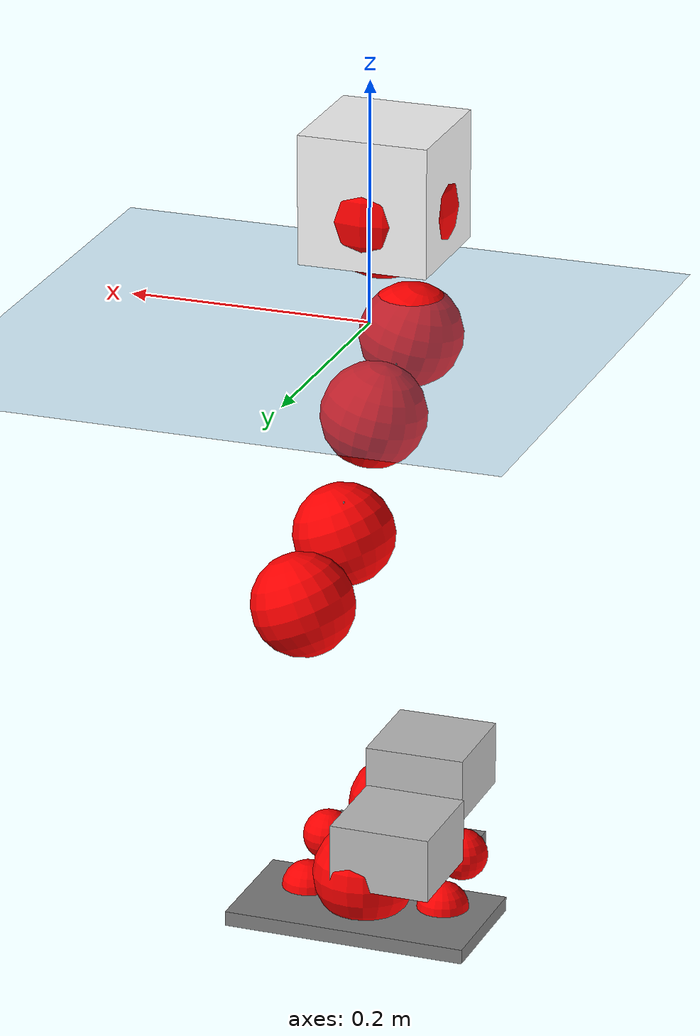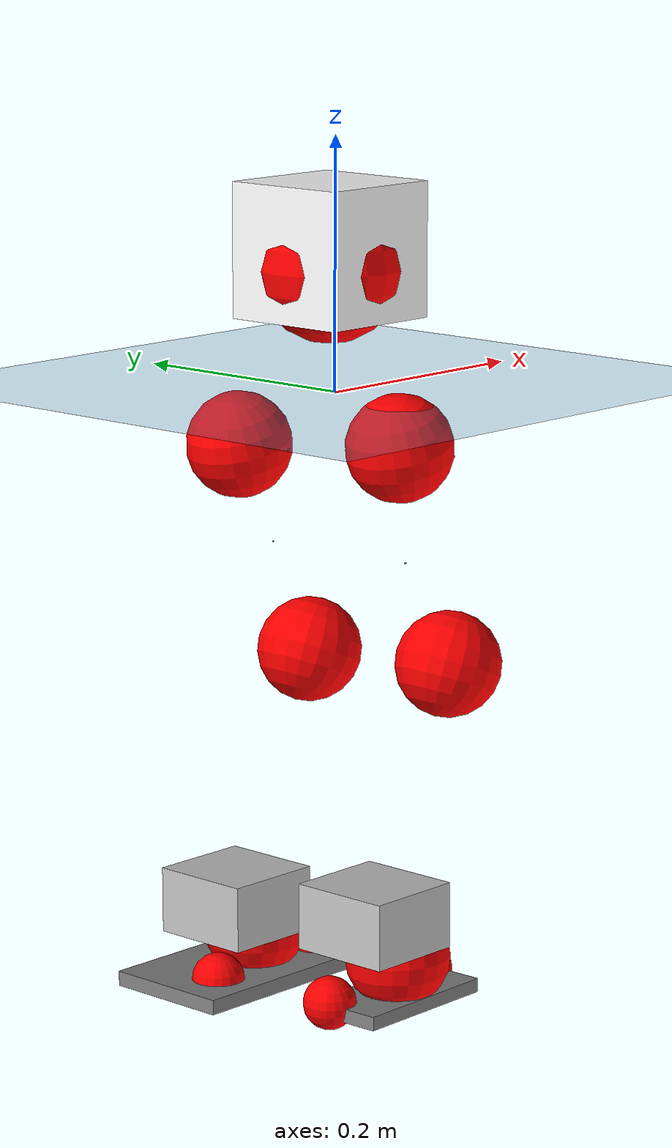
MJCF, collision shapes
<mujoco model="pi_12dof_release_v1">
  <compiler angle="radian" assetdir="assets" balanceinertia="true" inertiafromgeom="false"/>

  <option timestep="0.005" density="1.2" viscosity="2e-05"/>

  <size nkey="1"/>

  <visual>
    <quality shadowsize="8192"/>
    <map shadowclip="0.5"/>
  </visual>

  <default>
    <default class="/">
      <joint armature="0.01" damping="0.01" frictionloss="0.01"/>
      <geom contype="0" conaffinity="0" group="1" solref="-1000 -80"/>
      <site size="0.01 0.005 0.005" group="5"/>
      <general forcelimited="true" biastype="affine" gainprm="20" biasprm="0 -20 -0.5"/>
      <default class="foot">
        <geom size="0.0845 0.036 0.005" type="box" condim="6" group="4" priority="1" friction="0.9 0.2 0.2" solimp="0.015 1 0.005"/>
      </default>
      <default class="reward_collision_sphere">
        <geom group="5" rgba="1 0 0 1"/>
      </default>
    </default>
  </default>

  <asset>
    <texture type="skybox" colorspace="auto" name="//unnamed_texture_0" builtin="gradient" rgb1="0.95 0.95 0.95" rgb2="0.95 0.95 0.95" width="100" height="600"/>
    <texture type="2d" colorspace="auto" name="texplane" builtin="checker" rgb1="0.345 0.575 0.748" rgb2="0.345 0.575 0.748" markrgb="1 1 1" width="512" height="512"/>
    <material name="MatPlane" class="/" texture="texplane" texuniform="true" texrepeat="2 2" specular="0.9"/>
    <mesh name="baselink_1" class="/" file="baselink_1.STL"/>
    <mesh name="r_hip_pitch_link" class="/" file="r_hip_pitch_link.STL"/>
    <mesh name="r_hip_roll_link" class="/" file="r_hip_roll_link.STL"/>
    <mesh name="r_thigh_link" class="/" file="r_thigh_link.STL"/>
    <mesh name="r_calf_link" class="/" file="r_calf_link.STL"/>
    <mesh name="r_ankle_pitch_link" class="/" file="r_ankle_pitch_link.STL"/>
    <mesh name="r_ankle_roll_link" class="/" file="r_ankle_roll_link.STL"/>
    <mesh name="l_hip_pitch_link" class="/" file="l_hip_pitch_link.STL"/>
    <mesh name="l_hip_roll_link" class="/" file="l_hip_roll_link.STL"/>
    <mesh name="l_thigh_link" class="/" file="l_thigh_link.STL"/>
    <mesh name="l_calf_link" class="/" file="l_calf_link.STL"/>
    <mesh name="l_ankle_pitch_link" class="/" file="l_ankle_pitch_link.STL"/>
    <mesh name="l_ankle_roll_link" class="/" file="l_ankle_roll_link.STL"/>
  </asset>

  <worldbody>
    <geom name="floor" class="/" size="100 100 0.125" type="plane" group="0" material="MatPlane"/>
    <light name="toplight_shadow" class="/" pos="0 0 5" dir="0.0990148 0.0990148 -0.990148" type="directional" ambient="0.04 0.04 0.04" diffuse="0.55 0.55 0.55" specular="0.12 0.12 0.12"/>
    <light name="toplight_fill" class="/" pos="0 0 5" dir="0.0990148 0.0990148 -0.990148" type="directional" castshadow="false" ambient="0.04 0.04 0.04" diffuse="0.3 0.3 0.3" specular="0.08 0.08 0.08"/>
    <body name="trunk" pos="-0.0106218 -0.00395002 -0.000604034" quat="1 -0.000589886 0.000581431 -0.000500133">
      <inertial pos="0.00272011 -0.00108343 0.0579689" quat="0.712558 -0.00207789 -0.000690016 0.70161" mass="2.58404" diaginertia="0.00337735 0.00434872 0.0232748"/>
      <joint name="//unnamed_joint_0" type="free"/>
      <geom name="//unnamed_geom_1" class="/" type="mesh" density="0" rgba="1 1 1 1" mesh="baselink_1"/>
      <geom name="//unnamed_geom_2" class="/" size="0.0529169 0.0529169 0.0529169" pos="0 0 0.1135" type="box" rgba="1 1 1 1"/>
      <geom name="//unnamed_geom_3" class="reward_collision_sphere" size="0.0582086" pos="0 0 0.0993125"/>
      <site name="imu" class="/" pos="-0.0119153 0.00197047 0.0606371" size="0.0105834"/>
      <camera name="track" class="/" pos="0 -1.80564 0" quat="0.707107 0.707107 0 0" mode="trackcom"/>
      <camera name="ego_camera" class="/" pos="0.0640083 0 0.255375" quat="-0.5 -0.5 0.5 0.5"/>
      <body name="r_hip_pitch_link" pos="-0.00341834 -0.0201295 -0.0405496" quat="0.991641 -0.000669221 -0.129011 -0.00196868">
        <inertial pos="0.0123331 -0.0458721 -0.000278546" quat="-0.013839 0.708874 -0.0263827 0.704706" mass="0.440792" diaginertia="4.93177e-05 6.3807e-05 0.000471622"/>
        <joint name="r_hip_pitch_joint" class="/" pos="0 0 0" axis="0.0382428 -0.99892 -0.026403" stiffness="0.000801184" range="-1.97874 1.10322" armature="0.0106866" damping="0" frictionloss="0.0105312"/>
        <geom name="//unnamed_geom_4" class="/" type="mesh" density="0" rgba="0.75294 0.75294 0.75294 1" mesh="r_hip_pitch_link"/>
        <geom name="//unnamed_geom_5" class="/" size="0.000529169 0.000529169 0.000529169" type="box" rgba="0.75294 0.75294 0.75294 1"/>
        <body name="r_hip_roll_link" pos="0.0072071 -0.050795 0.00589353" quat="0.999998 0.00182561 -0.000851682 0.000896017">
          <inertial pos="-0.00028253 -0.00215993 -0.0736722" quat="0.693935 -0.0984011 -0.0865824 0.708007" mass="0.485301" diaginertia="0.000160093 0.00017466 0.000756543"/>
          <joint name="r_hip_roll_joint" class="/" pos="0 0 0" axis="-0.998844 0.0355606 -0.0323283" stiffness="0.00549988" range="-0.119871 0.288693" armature="0.00797819" damping="0.0305914" frictionloss="0.0148666"/>
          <geom name="//unnamed_geom_6" class="/" type="mesh" density="0" rgba="0.75294 0.75294 0.75294 1" mesh="r_hip_roll_link"/>
          <geom name="//unnamed_geom_7" class="/" size="0.000529169 0.000529169 0.000529169" type="box" rgba="0.75294 0.75294 0.75294 1"/>
          <geom name="//unnamed_geom_8" class="reward_collision_sphere" size="0.0423335"/>
          <body name="r_thigh_link" pos="-0.00325785 0.0131605 -0.0980067" quat="0.999992 -0.000269199 0.00372097 0.00137417">
            <inertial pos="-0.00505068 0.00274592 -0.0681092" quat="0.772962 0.6342 0.00429607 0.0173566" mass="0.112481" diaginertia="5.74799e-05 5.29771e-05 0.000342817"/>
            <joint name="r_thigh_joint" class="/" pos="0 0 0" axis="0.0205813 -0.0233682 -0.999515" stiffness="0.060672" range="-0.461114 0.35421" armature="0.0112671" damping="0.00890899" frictionloss="0.0131696"/>
            <geom name="//unnamed_geom_9" class="/" type="mesh" density="0" rgba="0.75294 0.75294 0.75294 1" mesh="r_thigh_link"/>
            <geom name="//unnamed_geom_10" class="/" size="0.000529169 0.000529169 0.000529169" type="box" rgba="0.75294 0.75294 0.75294 1"/>
            <body name="r_calf_link" pos="0.0127198 -0.0146826 -0.0902745" quat="0.947535 1.38749e-05 0.31965 -0.000448414">
              <inertial pos="-0.0126244 -0.00333453 -0.0877597" quat="0.999394 -0.0272919 -0.0210282 -0.00487743" mass="0.816498" diaginertia="0.00134434 0.00195042 0.000851832"/>
              <joint name="r_calf_joint" class="/" pos="0 0 0" axis="-0.0264914 -0.998379 0.0503785" stiffness="0.0254948" range="-1.66174 0.63661" armature="0.00796317" damping="0.0109726" frictionloss="0.011006"/>
              <geom name="//unnamed_geom_11" class="/" type="mesh" density="0" rgba="0.75294 0.75294 0.75294 1" mesh="r_calf_link"/>
              <geom name="//unnamed_geom_12" class="/" size="0.000529169 0.000529169 0.000529169" type="box" rgba="0.75294 0.75294 0.75294 1"/>
              <geom name="//unnamed_geom_13" class="reward_collision_sphere" size="0.0423335"/>
              <body name="r_ankle_pitch_link" pos="0.00167606 0.00716543 -0.205174" quat="0.980062 3.6135e-06 -0.198694 -3.10014e-05">
                <inertial pos="0.0094832 -0.0103844 -0.00238411" quat="4.9767e-05 0.708867 -0.000527725 0.705342" mass="0.200789" diaginertia="0.000136995 0.000126556 0.000664294"/>
                <joint name="r_ankle_pitch_joint" class="/" pos="0 0 0" axis="0.0100349 -0.999339 0.034939" range="-1.38769 0.517665" armature="0.015284" damping="0" frictionloss="0.0148051"/>
                <geom name="//unnamed_geom_14" class="/" type="mesh" density="0" rgba="0.75294 0.75294 0.75294 1" mesh="r_ankle_pitch_link"/>
                <geom name="//unnamed_geom_15" class="/" size="0.0412752 0.0423335 0.0264584" type="box" rgba="0.75294 0.75294 0.75294 1"/>
                <body name="r_ankle_roll_link" pos="0.0690838 -2.8987e-05 -0.00990502" quat="0.999981 -0.00465372 -0.00114418 0.00398976">
                  <inertial pos="-0.0340089 0.00740044 -0.0301749" quat="0.562419 0.432516 0.434366 0.554924" mass="0.694958" diaginertia="0.000481105 0.000545172 0.00138435"/>
                  <joint name="r_ankle_roll_joint" class="/" pos="0 0 0" axis="-0.998024 0.00336842 -0.0627506" stiffness="0.0328282" range="-0.130878 0.164647" armature="0.00948191" damping="0" frictionloss="0.0109399"/>
                  <geom name="//unnamed_geom_16" class="/" type="mesh" density="0" rgba="0.75294 0.75294 0.75294 1" mesh="r_ankle_roll_link"/>
                  <geom name="//unnamed_geom_17" class="/" type="mesh" rgba="0.75294 0.75294 0.75294 1" mesh="r_ankle_roll_link"/>
                  <geom name="right_foot" class="foot" size="0.0628451 0.0309105 0.00553784" pos="-0.0435256 0 -0.062425"/>
                  <geom name="//unnamed_geom_19" class="reward_collision_sphere" size="0.0423335" pos="-0.0426722 0 -0.028375"/>
                  <geom name="//unnamed_geom_20" class="reward_collision_sphere" size="0.0211668" pos="0.0128017 0.0180564 -0.05675"/>
                  <geom name="//unnamed_geom_21" class="reward_collision_sphere" size="0.0211668" pos="-0.102413 0.0180564 -0.05675"/>
                  <site name="right_foot" class="foot" pos="-0.0435256 0 -0.062425" size="0.0105834"/>
                </body>
              </body>
            </body>
          </body>
        </body>
      </body>
      <body name="l_hip_pitch_link" pos="-0.0139457 0.0314456 -0.0447565" quat="0.992303 -0.00077704 -0.123826 -0.000787797">
        <inertial pos="-0.0110234 0.0624663 0.000457776" quat="-0.0136114 0.73118 0.0539108 0.679915" mass="0.483277" diaginertia="5.8751e-05 6.25555e-05 0.000640088"/>
        <joint name="l_hip_pitch_joint" class="/" pos="0 0 0" axis="-0.055433 0.997731 0.0382035" stiffness="0.0535805" range="-1.02249 1.74713" armature="0.0166338" damping="0.00238011" frictionloss="0.00783808"/>
        <geom name="//unnamed_geom_22" class="/" type="mesh" density="0" rgba="0.75294 0.75294 0.75294 1" mesh="l_hip_pitch_link"/>
        <geom name="//unnamed_geom_23" class="/" size="0.000529169 0.000529169 0.000529169" type="box" rgba="0.75294 0.75294 0.75294 1"/>
        <body name="l_hip_roll_link" pos="-0.00584663 0.0473706 0.000696878" quat="0.999998 -0.00145853 -0.00110393 -0.000189171">
          <inertial pos="-0.00309304 -0.0118416 -0.0858607" quat="0.699937 -0.118523 -0.0777153 0.700001" mass="0.406145" diaginertia="0.000148336 0.000151128 0.000771983"/>
          <joint name="l_hip_roll_joint" class="/" pos="0 0 0" axis="-0.999588 0.00256334 -0.0285713" stiffness="0.0334274" range="-0.498079 0.0113336" armature="0.00507082" damping="0.0356332" frictionloss="0.0138813"/>
          <geom name="//unnamed_geom_24" class="/" type="mesh" density="0" rgba="0.75294 0.75294 0.75294 1" mesh="l_hip_roll_link"/>
          <geom name="//unnamed_geom_25" class="/" size="0.000529169 0.000529169 0.000529169" type="box" rgba="0.75294 0.75294 0.75294 1"/>
          <geom name="//unnamed_geom_26" class="reward_collision_sphere" size="0.0423335"/>
          <body name="l_thigh_link" pos="0.00716041 -0.0093946 -0.0854718" quat="0.999979 -0.00238449 -0.00101808 -0.00594893">
            <inertial pos="0.000429051 -0.000410659 -0.0812734" quat="0.656959 0.753758 -0.007175 0.0142028" mass="0.154722" diaginertia="5.66456e-05 6.12236e-05 0.000344267"/>
            <joint name="l_thigh_joint" class="/" pos="0 0 0" axis="0.0102624 0.0130351 -0.999862" range="-0.367024 0.280369" armature="0.0108339" damping="0.04449" frictionloss="0.0107031"/>
            <geom name="//unnamed_geom_27" class="/" type="mesh" density="0" rgba="0.75294 0.75294 0.75294 1" mesh="l_thigh_link"/>
            <geom name="//unnamed_geom_28" class="/" size="0.000529169 0.000529169 0.000529169" type="box" rgba="0.75294 0.75294 0.75294 1"/>
            <body name="l_calf_link" pos="0.0119014 -0.00429228 -0.099675" quat="0.947377 0.00133622 0.320115 0.000697455">
              <inertial pos="-0.00794823 -0.00224477 -0.101743" quat="0.998384 0.0249295 -0.0139044 -0.0491362" mass="0.976638" diaginertia="0.00148896 0.00193474 0.000929549"/>
              <joint name="l_calf_joint" class="/" pos="0 0 0" axis="0.0516989 0.998657 -0.00346464" stiffness="0.00124125" range="-0.804637 1.5726" armature="0.0116389" damping="0.0102249" frictionloss="0.0157025"/>
              <geom name="//unnamed_geom_29" class="/" type="mesh" density="0" rgba="0.75294 0.75294 0.75294 1" mesh="l_calf_link"/>
              <geom name="//unnamed_geom_30" class="/" size="0.000529169 0.000529169 0.000529169" type="box" rgba="0.75294 0.75294 0.75294 1"/>
              <geom name="//unnamed_geom_31" class="reward_collision_sphere" size="0.0423335"/>
              <body name="l_ankle_pitch_link" pos="-6.25711e-05 0.00412931 -0.209206" quat="0.979727 -0.000555845 -0.200334 0.000573948">
                <inertial pos="0.00195017 -0.00149617 -0.00282101" quat="-0.00899965 0.689194 0.0632146 0.721758" mass="0.217559" diaginertia="0.000139938 0.000119246 0.000584957"/>
                <joint name="l_ankle_pitch_joint" class="/" pos="0 0 0" axis="-0.00101996 0.999857 0.0168607" range="-0.655426 1.16174" armature="0.0120264" damping="0.0463454" frictionloss="0.00993761"/>
                <geom name="//unnamed_geom_32" class="/" type="mesh" density="0" rgba="0.75294 0.75294 0.75294 1" mesh="l_ankle_pitch_link"/>
                <geom name="//unnamed_geom_33" class="/" size="0.0412752 0.0423335 0.0264584" type="box" rgba="0.75294 0.75294 0.75294 1"/>
                <body name="l_ankle_roll_link" pos="0.0678175 0.00474203 0.000935825" quat="1 0.000852633 4.74492e-05 0.000269103">
                  <inertial pos="-0.00992928 0.0126908 -0.0322037" quat="0.561495 0.432731 0.433786 0.556145" mass="0.538236" diaginertia="0.000558369 0.000539111 0.0016443"/>
                  <joint name="l_ankle_roll_joint" class="/" pos="0 0 0" axis="-0.999905 0.000825408 0.0137844" range="-0.190429 0.290581" armature="0.0103293" damping="0" frictionloss="0.00508338"/>
                  <geom name="//unnamed_geom_34" class="/" type="mesh" density="0" rgba="0.75294 0.75294 0.75294 1" mesh="l_ankle_roll_link"/>
                  <geom name="//unnamed_geom_35" class="/" type="mesh" rgba="0.75294 0.75294 0.75294 1" mesh="l_ankle_roll_link"/>
                  <geom name="left_foot" class="foot" size="0.100201 0.053384 0.0060021" pos="-0.0435256 0 -0.062425"/>
                  <geom name="//unnamed_geom_37" class="reward_collision_sphere" size="0.0423335" pos="-0.0426722 0 -0.028375"/>
                  <geom name="//unnamed_geom_38" class="reward_collision_sphere" size="0.0211668" pos="0.0128017 -0.0180564 -0.05675"/>
                  <geom name="//unnamed_geom_39" class="reward_collision_sphere" size="0.0211668" pos="-0.102413 -0.0180564 -0.05675"/>
                  <site name="left_foot" class="foot" pos="-0.0435256 0 -0.062425" size="0.0105834"/>
                </body>
              </body>
            </body>
          </body>
        </body>
      </body>
    </body>
  </worldbody>

  <contact>
    <pair class="/" geom1="floor" geom2="right_foot" name="//unnamed_contact_1"/>
    <pair class="/" geom1="floor" geom2="left_foot" name="//unnamed_contact_0"/>
  </contact>

  <actuator>
    <general name="r_hip_pitch_joint" class="/" joint="r_hip_pitch_joint" forcerange="-18.3741 18.3741" gainprm="21.258" biasprm="0 -21.258 -0.566561"/>
    <general name="r_hip_roll_joint" class="/" joint="r_hip_roll_joint" forcerange="-13.0406 13.0406" gainprm="21.258" biasprm="0 -21.258 -0.566561"/>
    <general name="r_thigh_joint" class="/" joint="r_thigh_joint" forcerange="-25.5319 25.5319" gainprm="21.258" biasprm="0 -21.258 -0.566561"/>
    <general name="r_calf_joint" class="/" joint="r_calf_joint" forcerange="-11.9152 11.9152" gainprm="21.258" biasprm="0 -21.258 -0.566561"/>
    <general name="r_ankle_pitch_joint" class="/" joint="r_ankle_pitch_joint" forcerange="-24.0443 24.0443" gainprm="21.258" biasprm="0 -21.258 -0.566561"/>
    <general name="r_ankle_roll_joint" class="/" joint="r_ankle_roll_joint" forcerange="-19.8425 19.8425" gainprm="21.258" biasprm="0 -21.258 -0.566561"/>
    <general name="l_hip_pitch_joint" class="/" joint="l_hip_pitch_joint" forcerange="-22.5614 22.5614" gainprm="21.258" biasprm="0 -21.258 -0.566561"/>
    <general name="l_hip_roll_joint" class="/" joint="l_hip_roll_joint" forcerange="-30.3419 30.3419" gainprm="21.258" biasprm="0 -21.258 -0.566561"/>
    <general name="l_thigh_joint" class="/" joint="l_thigh_joint" forcerange="-18.5594 18.5594" gainprm="21.258" biasprm="0 -21.258 -0.566561"/>
    <general name="l_calf_joint" class="/" joint="l_calf_joint" forcerange="-22.5267 22.5267" gainprm="21.258" biasprm="0 -21.258 -0.566561"/>
    <general name="l_ankle_pitch_joint" class="/" joint="l_ankle_pitch_joint" forcerange="-22.0535 22.0535" gainprm="21.258" biasprm="0 -21.258 -0.566561"/>
    <general name="l_ankle_roll_joint" class="/" joint="l_ankle_roll_joint" forcerange="-16.8177 16.8177" gainprm="21.258" biasprm="0 -21.258 -0.566561"/>
  </actuator>

  <sensor>
    <gyro site="imu" name="imu_angular_velocity"/>
    <velocimeter site="imu" name="imu_linear_velocity"/>
    <framelinvel objtype="site" objname="left_foot" name="left_foot_global_linear_velocity"/>
    <framelinvel objtype="site" objname="right_foot" name="right_foot_global_linear_velocity"/>
  </sensor>

  <keyframe>
    <key name="home" qpos="0 0 0.291 1 0 0 0 0.4 0 0 -0.8 0.4 0 -0.4 0 0 0.8 -0.4 0"/>
  </keyframe>
</mujoco>
